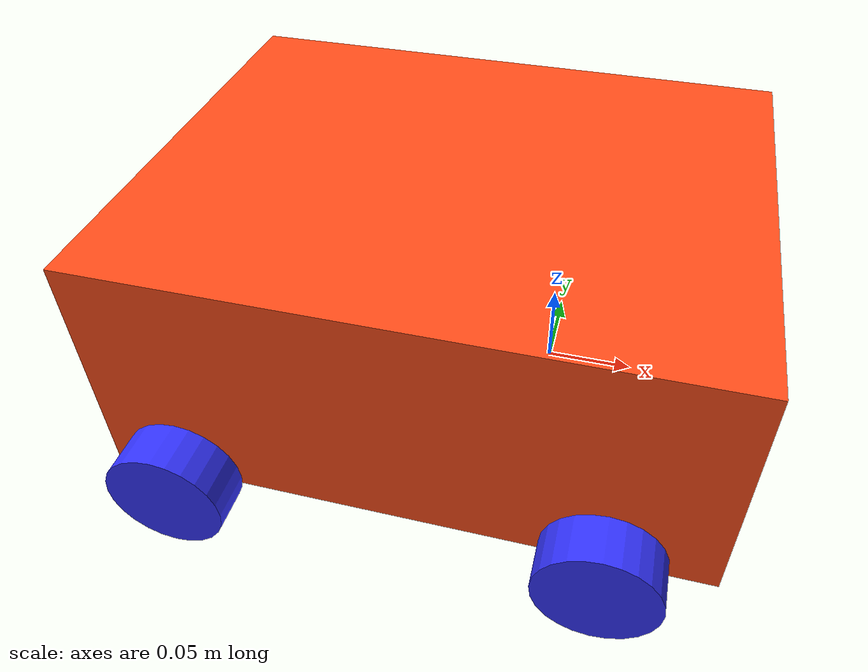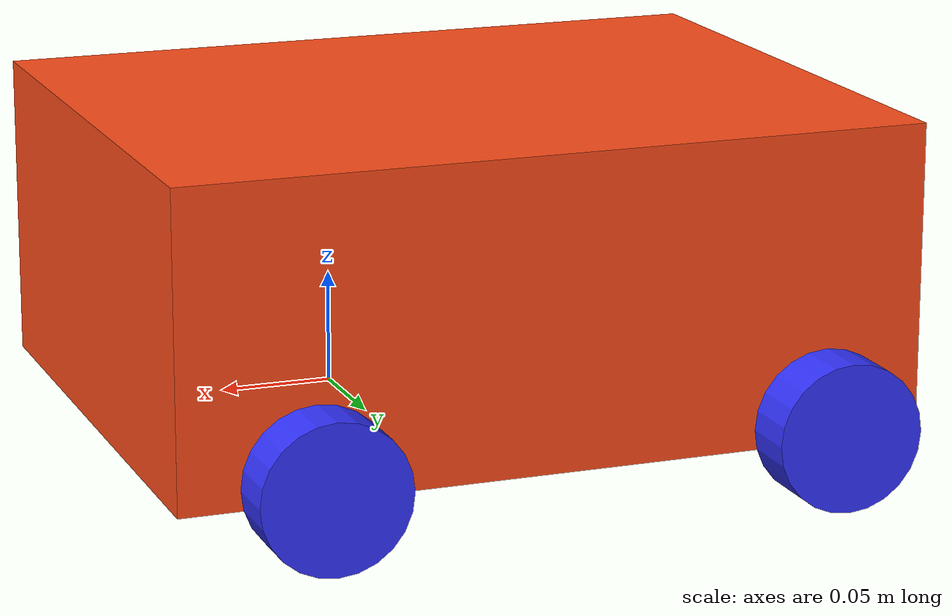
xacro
<?xml version="1.0"?>
<robot xmlns:xacro="http://www.ros.org/wiki/xacro" >

    <xacro:macro name="inertial_sphere" params="mass radius *origin">
        <inertial>
            <xacro:insert_block name="origin"/>
            <mass value="${mass}" />
            <inertia ixx="${(2/5) * mass * (radius*radius)}" ixy="0.0" ixz="0.0"
                    iyy="${(2/5) * mass * (radius*radius)}" iyz="0.0"
                    izz="${(2/5) * mass * (radius*radius)}" />
        </inertial>
    </xacro:macro>

    <xacro:macro name="inertial_box" params="mass x y z *origin">
        <inertial>
            <xacro:insert_block name="origin"/>
            <mass value="${mass}" />
            <inertia ixx="${(1/12) * mass * (y*y+z*z)}" ixy="0.0" ixz="0.0"
                    iyy="${(1/12) * mass * (x*x+z*z)}" iyz="0.0"
                    izz="${(1/12) * mass * (x*x+y*y)}" />
        </inertial>
    </xacro:macro>

    <xacro:macro name="inertial_cylinder" params="mass length radius *origin">
        <inertial>
            <xacro:insert_block name="origin"/>
            <mass value="${mass}" />
            <inertia ixx="${(1/12) * mass * (3*radius*radius + length*length)}" ixy="0.0" ixz="0.0"
                    iyy="${(1/12) * mass * (3*radius*radius + length*length)}" iyz="0.0"
                    izz="${(1/2) * mass * (radius*radius)}" />
        </inertial>
    </xacro:macro>

    <xacro:property name="chassis_length" value="0.335"/>
    <xacro:property name="chassis_width" value="0.265"/>
    <xacro:property name="chassis_height" value="0.138"/>
    <xacro:property name="chassis_mass" value="1.0"/>
    <xacro:property name="wheel_radius" value="0.033"/>
    <xacro:property name="wheel_thickness" value="0.026"/>
    <xacro:property name="wheel_mass" value="0.05"/>
    <xacro:property name="wheel_offset_x" value="0.226"/>
    <xacro:property name="wheel_offset_y" value="0.1485"/>
    <xacro:property name="wheel_offset_z" value="0.01"/>
    <xacro:property name="caster_wheel_radius" value="0.01"/>
    <xacro:property name="caster_wheel_mass" value="0.01"/>
    <xacro:property name="caster_wheel_offset_x" value="0.075"/>
    <xacro:property name="caster_wheel_offset_z" value="${wheel_offset_z - wheel_radius + caster_wheel_radius}"/>

    <material name="white">
        <color rgba="1 1 1 1" />
    </material>

    <material name="orange">
        <color rgba="1 0.3 0.1 1"/>
    </material>

    <material name="blue">
        <color rgba="0.2 0.2 1 1"/>
    </material>

    <material name="black">
        <color rgba="0 0 0 1"/>
    </material>

    <material name="red">
        <color rgba="1 0 0 1"/>
    </material>

    <!-- BASE LINK -->

    <link name="base_link">

    </link>

    <!-- BASE_FOOTPRINT LINK -->

    <joint name="base_footprint_joint" type="fixed">
        <parent link="base_link"/>
        <child link="base_footprint"/>
        <origin xyz="0 0 0" rpy="0 0 0"/>
    </joint>

    <link name="base_footprint">
    </link>

    <!-- CHASSIS LINK -->

    <joint name="chassis_joint" type="fixed">
        <parent link="base_link"/>
        <child link="chassis"/>
        <origin xyz="${-wheel_offset_x} 0 ${-wheel_offset_z}"/>
    </joint>

    <link name="chassis">
        <visual>
            <origin xyz="${chassis_length/2} 0 ${chassis_height/2}"/>
            <geometry>
                <box size="${chassis_length} ${chassis_width} ${chassis_height}"/>
            </geometry>
            <material name="orange"/>
        </visual>
        <collision>
            <origin xyz="${chassis_length/2} 0 ${chassis_height/2}"/>
            <geometry>
                <box size="${chassis_length} ${chassis_width} ${chassis_height}"/>
            </geometry>
        </collision>
        <xacro:inertial_box mass="0.5" x="${chassis_length}" y="${chassis_width}" z="${chassis_height}">
            <origin xyz="${chassis_length/2} 0 ${chassis_height/2}" rpy="0 0 0"/>
        </xacro:inertial_box>
    </link>

    <gazebo reference="chassis">
        <material>Gazebo/Orange</material>
    </gazebo>

    <!-- LEFT WHEEL LINK -->

    <joint name="left_wheel_joint" type="continuous">
        <parent link="base_link"/>
        <child link="left_wheel"/>
        <origin xyz="0.05 ${wheel_offset_y} 0" rpy="-${pi/2} 0 0" />
        <axis xyz="0 0 1"/>
    </joint>

    <link name="left_wheel">
        <visual>
            <geometry>
                <cylinder radius="${wheel_radius}" length="${wheel_thickness}"/>
            </geometry>
            <material name="blue"/>
        </visual>
        <collision>
            <geometry>
                <cylinder radius="${wheel_radius}" length="${wheel_thickness}"/>
            </geometry>
        </collision>
        <xacro:inertial_cylinder mass="${wheel_mass}" length="${wheel_thickness}" radius="${wheel_radius}">
            <origin xyz="0 0 0" rpy="0 0 0"/>
        </xacro:inertial_cylinder>
    </link>

    <gazebo reference="left_wheel">
        <material>Gazebo/Blue</material>
    </gazebo>

    <transmission name="left_wheel_trans">
        <type>transmission_interface/SimpleTransmission</type>
        <joint name="left_wheel_joint">
            <hardware_interface>velocity</hardware_interface>
        </joint>
        <actuator name="left_wheel_motor">
            <hardware_interface>velocity</hardware_interface>
            <mechanicalReduction>1</mechanicalReduction>
        </actuator>
    </transmission>

    <!-- RIGHT WHEEL LINK -->

    <joint name="right_wheel_joint" type="continuous">
        <parent link="base_link"/>
        <child link="right_wheel"/>
        <origin xyz="0.05 ${-wheel_offset_y} 0" rpy="${pi/2} 0 0" />
        <axis xyz="0 0 -1"/>
    </joint>

    <link name="right_wheel">
        <visual>
            <geometry>
                <cylinder radius="${wheel_radius}" length="${wheel_thickness}"/>
            </geometry>
            <material name="blue"/>
        </visual>
        <collision>
            <geometry>
                <cylinder radius="${wheel_radius}" length="${wheel_thickness}"/>
            </geometry>
        </collision>
        <xacro:inertial_cylinder mass="${wheel_mass}" length="${wheel_thickness}" radius="${wheel_radius}">
            <origin xyz="0 0 0" rpy="0 0 0"/>
        </xacro:inertial_cylinder>
    </link>

    <gazebo reference="right_wheel">
        <material>Gazebo/Blue</material>
    </gazebo>

    <transmission name="right_wheel_trans">
        <type>transmission_interface/SimpleTransmission</type>
        <joint name="right_wheel_joint">
            <hardware_interface>velocity</hardware_interface>
        </joint>
        <actuator name="right_wheel_motor">
            <hardware_interface>velocity</hardware_interface>
            <mechanicalReduction>1</mechanicalReduction>
        </actuator>
    </transmission>

     <!-- LEFT WHEEL LINK -->

    <joint name="leftr_wheel_joint" type="continuous">
        <parent link="base_link"/>
        <child link="leftr_wheel"/>
        <origin xyz="-0.18 ${wheel_offset_y} 0" rpy="-${pi/2} 0 0" />
        <axis xyz="0 0 1"/>
    </joint>

    <link name="leftr_wheel">
        <visual>
            <geometry>
                <cylinder radius="${wheel_radius}" length="${wheel_thickness}"/>
            </geometry>
            <material name="blue"/>
        </visual>
        <collision>
            <geometry>
                <cylinder radius="${wheel_radius}" length="${wheel_thickness}"/>
            </geometry>
        </collision>
        <xacro:inertial_cylinder mass="${wheel_mass}" length="${wheel_thickness}" radius="${wheel_radius}">
            <origin xyz="0 0 0" rpy="0 0 0"/>
        </xacro:inertial_cylinder>
    </link>

    <gazebo reference="leftr_wheel">
        <material>Gazebo/Blue</material>
    </gazebo>

    <transmission name="leftr_wheel_trans">
        <type>transmission_interface/SimpleTransmission</type>
        <joint name="leftr_wheel_joint">
            <hardware_interface>velocity</hardware_interface>
        </joint>
        <actuator name="leftr_wheel_motor">
            <hardware_interface>velocity</hardware_interface>
            <mechanicalReduction>1</mechanicalReduction>
        </actuator>
    </transmission>

    <!-- RIGHT WHEEL LINK -->

    <joint name="rightr_wheel_joint" type="continuous">
        <parent link="base_link"/>
        <child link="rightr_wheel"/>
        <origin xyz="-0.18 ${-wheel_offset_y} 0" rpy="${pi/2} 0 0" />
        <axis xyz="0 0 -1"/>
    </joint>

    <link name="rightr_wheel">
        <visual>
            <geometry>
                <cylinder radius="${wheel_radius}" length="${wheel_thickness}"/>
            </geometry>
            <material name="blue"/>
        </visual>
        <collision>
            <geometry>
                <cylinder radius="${wheel_radius}" length="${wheel_thickness}"/>
            </geometry>
        </collision>
        <xacro:inertial_cylinder mass="${wheel_mass}" length="${wheel_thickness}" radius="${wheel_radius}">
            <origin xyz="0 0 0" rpy="0 0 0"/>
        </xacro:inertial_cylinder>
    </link>

    <gazebo reference="rightr_wheel">
        <material>Gazebo/Blue</material>
    </gazebo>

    <transmission name="rightr_wheel_trans">
        <type>transmission_interface/SimpleTransmission</type>
        <joint name="rightr_wheel_joint">
            <hardware_interface>velocity</hardware_interface>
        </joint>
        <actuator name="rightr_wheel_motor">
            <hardware_interface>velocity</hardware_interface>
            <mechanicalReduction>1</mechanicalReduction>
        </actuator>
    </transmission>

    <!-- CASTER WHEEL LINK -->

    <joint name="caster_wheel_joint" type="fixed">
        <parent link="chassis"/>
        <child link="caster_wheel"/>
        <origin xyz="${caster_wheel_offset_x} 0 ${caster_wheel_offset_z}"/>
    </joint>

    <link name="caster_wheel">
        <visual>
            <geometry>
                <sphere radius="${caster_wheel_radius}"/>
            </geometry>
            <material name="white"/>
        </visual>
        <collision>
            <geometry>
                <sphere radius="${caster_wheel_radius}"/>
            </geometry>
        </collision>
        <xacro:inertial_sphere mass="${caster_wheel_mass}" radius="${caster_wheel_radius}">
            <origin xyz="0 0 0" rpy="0 0 0"/>
        </xacro:inertial_sphere>
    </link>

    <gazebo reference="caster_wheel">
        <material>Gazebo/White</material>
        <mu1 value="0.001"/>
        <mu2 value="0.001"/>
    </gazebo>

    <ros2_control name="GazeboSystem" type="system">
        <hardware>
            <plugin>gazebo_ros2_control/GazeboSystem</plugin>
        </hardware>

        <joint name="left_wheel_joint">
            <command_interface name="velocity"/>
            <state_interface name="position"/>
            <state_interface name="velocity"/>
            <state_interface name="effort"/>
        </joint>

        <joint name="right_wheel_joint">
            <command_interface name="velocity"/>
            <state_interface name="position"/>
            <state_interface name="velocity"/>
            <state_interface name="effort"/>
        </joint>

        <joint name="leftr_wheel_joint">
            <command_interface name="velocity"/>
            <state_interface name="position"/>
            <state_interface name="velocity"/>
            <state_interface name="effort"/>
        </joint>

        <joint name="rightr_wheel_joint">
            <command_interface name="velocity"/>
            <state_interface name="position"/>
            <state_interface name="velocity"/>
            <state_interface name="effort"/>
        </joint>

    </ros2_control>

    <gazebo>
        <plugin name="gazebo_ros2_control" filename="libgazebo_ros2_control.so">
            <parameters>$(find usb_ros2_state)/config/parameter.yaml</parameters>
        </plugin>
    </gazebo>

</robot>
